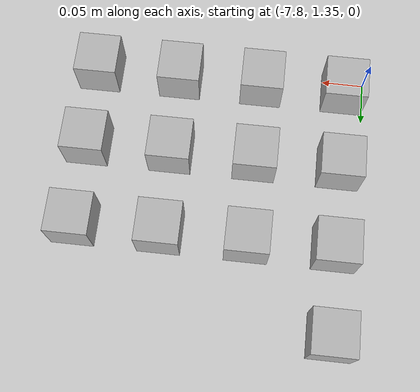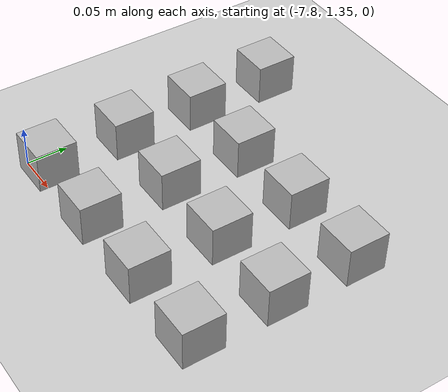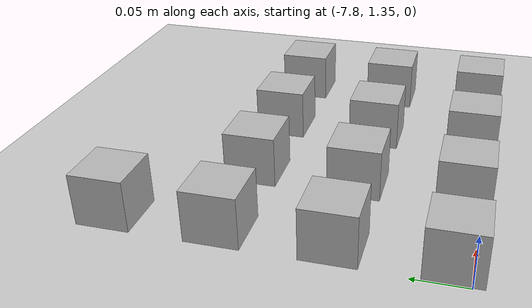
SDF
<sdf version="1.4">
 <world name="default">
  <model name="ground_plane">
   <static>1</static>
   <link name="link">
    <collision name="collision">
     <geometry><plane><normal>0 0 1</normal><size>100 100</size></plane></geometry>
     <surface><friction><ode><mu>100</mu><mu2>50</mu2></ode></friction></surface>
    </collision>
    <visual name="visual">
     <cast_shadows>0</cast_shadows>
     <geometry><plane><normal>0 0 1</normal><size>100 100</size></plane></geometry>
     <material>
      <script><uri>file://media/materials/scripts/gazebo.material</uri><name>Gazebo/Grey</name></script>
     </material>
    </visual>
    <velocity_decay><linear>0</linear><angular>0</angular></velocity_decay>
   </link>
  </model>
  <model name="at0">
   <static>0</static>
   <link name="link">
    <inertial>
     <mass>0.01</mass>
     <inertia><ixx>4e-05</ixx><ixy>0</ixy><ixz>0</ixz><iyy>4e-05</iyy><iyz>0</iyz><izz>4e-05</izz></inertia>
    </inertial>
    <visual name="visual">
     <geometry><box><size>0.05 0.05 0.05</size></box></geometry>
     <material>
      <script>
       <uri>model://at0/materials/scripts</uri>
       <uri>model://at0/materials/textures</uri>
       <name>at0/Diffuse</name>
      </script>
     </material>
    </visual>
    <collision name="collision">
     <geometry><box><size>0.05 0.05 0.05</size></box></geometry>
     <surface><friction><ode><mu>0.8</mu><mu2>0.7</mu2></ode></friction></surface>
    </collision>
    <velocity_decay><linear>0</linear><angular>0</angular></velocity_decay>
   </link>
   <pose>-7.77385 1.36515 0.025 0 -0 0</pose>
  </model>
  <model name="at1">
   <static>0</static>
   <link name="link">
    <inertial>
     <mass>0.01</mass>
     <inertia><ixx>4e-05</ixx><ixy>0</ixy><ixz>0</ixz><iyy>4e-05</iyy><iyz>0</iyz><izz>4e-05</izz></inertia>
    </inertial>
    <visual name="visual">
     <geometry><box><size>0.05 0.05 0.05</size></box></geometry>
     <material>
      <script>
       <uri>model://at0/materials/scripts</uri>
       <uri>model://at0/materials/textures</uri>
       <name>at0/Diffuse</name>
      </script>
     </material>
    </visual>
    <collision name="collision">
     <geometry><box><size>0.05 0.05 0.05</size></box></geometry>
     <surface><friction><ode><mu>0.8</mu><mu2>0.7</mu2></ode></friction></surface>
    </collision>
    <velocity_decay><linear>0</linear><angular>0</angular></velocity_decay>
   </link>
   <pose>-7.67385 1.36515 0.025 0 -0 0</pose>
  </model>
  <model name="at2">
   <static>0</static>
   <link name="link">
    <inertial>
     <mass>0.01</mass>
     <inertia><ixx>4e-05</ixx><ixy>0</ixy><ixz>0</ixz><iyy>4e-05</iyy><iyz>0</iyz><izz>4e-05</izz></inertia>
    </inertial>
    <visual name="visual">
     <geometry><box><size>0.05 0.05 0.05</size></box></geometry>
     <material>
      <script>
       <uri>model://at0/materials/scripts</uri>
       <uri>model://at0/materials/textures</uri>
       <name>at0/Diffuse</name>
      </script>
     </material>
    </visual>
    <collision name="collision">
     <geometry><box><size>0.05 0.05 0.05</size></box></geometry>
     <surface><friction><ode><mu>0.8</mu><mu2>0.7</mu2></ode></friction></surface>
    </collision>
    <velocity_decay><linear>0</linear><angular>0</angular></velocity_decay>
   </link>
   <pose>-7.57385 1.36515 0.025 0 -0 0</pose>
  </model>
  <model name="at3">
   <static>0</static>
   <link name="link">
    <inertial>
     <mass>0.01</mass>
     <inertia><ixx>4e-05</ixx><ixy>0</ixy><ixz>0</ixz><iyy>4e-05</iyy><iyz>0</iyz><izz>4e-05</izz></inertia>
    </inertial>
    <visual name="visual">
     <geometry><box><size>0.05 0.05 0.05</size></box></geometry>
     <material>
      <script>
       <uri>model://at0/materials/scripts</uri>
       <uri>model://at0/materials/textures</uri>
       <name>at0/Diffuse</name>
      </script>
     </material>
    </visual>
    <collision name="collision">
     <geometry><box><size>0.05 0.05 0.05</size></box></geometry>
     <surface><friction><ode><mu>0.8</mu><mu2>0.7</mu2></ode></friction></surface>
    </collision>
    <velocity_decay><linear>0</linear><angular>0</angular></velocity_decay>
   </link>
   <pose>-7.47385 1.36515 0.025 0 -0 0</pose>
  </model>
  <model name="at8">
   <static>0</static>
   <link name="link">
    <inertial>
     <mass>0.01</mass>
     <inertia><ixx>4e-05</ixx><ixy>0</ixy><ixz>0</ixz><iyy>4e-05</iyy><iyz>0</iyz><izz>4e-05</izz></inertia>
    </inertial>
    <visual name="visual">
     <geometry><box><size>0.05 0.05 0.05</size></box></geometry>
     <material>
      <script>
       <uri>model://at0/materials/scripts</uri>
       <uri>model://at0/materials/textures</uri>
       <name>at0/Diffuse</name>
      </script>
     </material>
    </visual>
    <collision name="collision">
     <geometry><box><size>0.05 0.05 0.05</size></box></geometry>
     <surface><friction><ode><mu>0.8</mu><mu2>0.7</mu2></ode></friction></surface>
    </collision>
    <velocity_decay><linear>0</linear><angular>0</angular></velocity_decay>
   </link>
   <pose>-7.77385 1.46515 0.025 0 -0 0</pose>
  </model>
  <model name="at9">
   <static>0</static>
   <link name="link">
    <inertial>
     <mass>0.01</mass>
     <inertia><ixx>4e-05</ixx><ixy>0</ixy><ixz>0</ixz><iyy>4e-05</iyy><iyz>0</iyz><izz>4e-05</izz></inertia>
    </inertial>
    <visual name="visual">
     <geometry><box><size>0.05 0.05 0.05</size></box></geometry>
     <material>
      <script>
       <uri>model://at0/materials/scripts</uri>
       <uri>model://at0/materials/textures</uri>
       <name>at0/Diffuse</name>
      </script>
     </material>
    </visual>
    <collision name="collision">
     <geometry><box><size>0.05 0.05 0.05</size></box></geometry>
     <surface><friction><ode><mu>0.8</mu><mu2>0.7</mu2></ode></friction></surface>
    </collision>
    <velocity_decay><linear>0</linear><angular>0</angular></velocity_decay>
   </link>
   <pose>-7.67385 1.46515 0.025 0 -0 0</pose>
  </model>
  <model name="at10">
   <static>0</static>
   <link name="link">
    <inertial>
     <mass>0.01</mass>
     <inertia><ixx>4e-05</ixx><ixy>0</ixy><ixz>0</ixz><iyy>4e-05</iyy><iyz>0</iyz><izz>4e-05</izz></inertia>
    </inertial>
    <visual name="visual">
     <geometry><box><size>0.05 0.05 0.05</size></box></geometry>
     <material>
      <script>
       <uri>model://at0/materials/scripts</uri>
       <uri>model://at0/materials/textures</uri>
       <name>at0/Diffuse</name>
      </script>
     </material>
    </visual>
    <collision name="collision">
     <geometry><box><size>0.05 0.05 0.05</size></box></geometry>
     <surface><friction><ode><mu>0.8</mu><mu2>0.7</mu2></ode></friction></surface>
    </collision>
    <velocity_decay><linear>0</linear><angular>0</angular></velocity_decay>
   </link>
   <pose>-7.57385 1.46515 0.025 0 -0 0</pose>
  </model>
  <model name="at11">
   <static>0</static>
   <link name="link">
    <inertial>
     <mass>0.01</mass>
     <inertia><ixx>4e-05</ixx><ixy>0</ixy><ixz>0</ixz><iyy>4e-05</iyy><iyz>0</iyz><izz>4e-05</izz></inertia>
    </inertial>
    <visual name="visual">
     <geometry><box><size>0.05 0.05 0.05</size></box></geometry>
     <material>
      <script>
       <uri>model://at0/materials/scripts</uri>
       <uri>model://at0/materials/textures</uri>
       <name>at0/Diffuse</name>
      </script>
     </material>
    </visual>
    <collision name="collision">
     <geometry><box><size>0.05 0.05 0.05</size></box></geometry>
     <surface><friction><ode><mu>0.8</mu><mu2>0.7</mu2></ode></friction></surface>
    </collision>
    <velocity_decay><linear>0</linear><angular>0</angular></velocity_decay>
   </link>
   <pose>-7.47385 1.46515 0.025 0 -0 0</pose>
  </model>
  <model name="at16">
   <static>0</static>
   <link name="link">
    <inertial>
     <mass>0.01</mass>
     <inertia><ixx>4e-05</ixx><ixy>0</ixy><ixz>0</ixz><iyy>4e-05</iyy><iyz>0</iyz><izz>4e-05</izz></inertia>
    </inertial>
    <visual name="visual">
     <geometry><box><size>0.05 0.05 0.05</size></box></geometry>
     <material>
      <script>
       <uri>model://at0/materials/scripts</uri>
       <uri>model://at0/materials/textures</uri>
       <name>at0/Diffuse</name>
      </script>
     </material>
    </visual>
    <collision name="collision">
     <geometry><box><size>0.05 0.05 0.05</size></box></geometry>
     <surface><friction><ode><mu>0.8</mu><mu2>0.7</mu2></ode></friction></surface>
    </collision>
    <velocity_decay><linear>0</linear><angular>0</angular></velocity_decay>
   </link>
   <pose>-7.77385 1.56515 0.025 0 -0 0</pose>
  </model>
  <model name="at17">
   <static>0</static>
   <link name="link">
    <inertial>
     <mass>0.01</mass>
     <inertia><ixx>4e-05</ixx><ixy>0</ixy><ixz>0</ixz><iyy>4e-05</iyy><iyz>0</iyz><izz>4e-05</izz></inertia>
    </inertial>
    <visual name="visual">
     <geometry><box><size>0.05 0.05 0.05</size></box></geometry>
     <material>
      <script>
       <uri>model://at0/materials/scripts</uri>
       <uri>model://at0/materials/textures</uri>
       <name>at0/Diffuse</name>
      </script>
     </material>
    </visual>
    <collision name="collision">
     <geometry><box><size>0.05 0.05 0.05</size></box></geometry>
     <surface><friction><ode><mu>0.8</mu><mu2>0.7</mu2></ode></friction></surface>
    </collision>
    <velocity_decay><linear>0</linear><angular>0</angular></velocity_decay>
   </link>
   <pose>-7.67385 1.56515 0.025 0 -0 0</pose>
  </model>
  <model name="at18">
   <static>0</static>
   <link name="link">
    <inertial>
     <mass>0.01</mass>
     <inertia><ixx>4e-05</ixx><ixy>0</ixy><ixz>0</ixz><iyy>4e-05</iyy><iyz>0</iyz><izz>4e-05</izz></inertia>
    </inertial>
    <visual name="visual">
     <geometry><box><size>0.05 0.05 0.05</size></box></geometry>
     <material>
      <script>
       <uri>model://at0/materials/scripts</uri>
       <uri>model://at0/materials/textures</uri>
       <name>at0/Diffuse</name>
      </script>
     </material>
    </visual>
    <collision name="collision">
     <geometry><box><size>0.05 0.05 0.05</size></box></geometry>
     <surface><friction><ode><mu>0.8</mu><mu2>0.7</mu2></ode></friction></surface>
    </collision>
    <velocity_decay><linear>0</linear><angular>0</angular></velocity_decay>
   </link>
   <pose>-7.57385 1.56515 0.025 0 -0 0</pose>
  </model>
  <model name="at19">
   <static>0</static>
   <link name="link">
    <inertial>
     <mass>0.01</mass>
     <inertia><ixx>4e-05</ixx><ixy>0</ixy><ixz>0</ixz><iyy>4e-05</iyy><iyz>0</iyz><izz>4e-05</izz></inertia>
    </inertial>
    <visual name="visual">
     <geometry><box><size>0.05 0.05 0.05</size></box></geometry>
     <material>
      <script>
       <uri>model://at0/materials/scripts</uri>
       <uri>model://at0/materials/textures</uri>
       <name>at0/Diffuse</name>
      </script>
     </material>
    </visual>
    <collision name="collision">
     <geometry><box><size>0.05 0.05 0.05</size></box></geometry>
     <surface><friction><ode><mu>0.8</mu><mu2>0.7</mu2></ode></friction></surface>
    </collision>
    <velocity_decay><linear>0</linear><angular>0</angular></velocity_decay>
   </link>
   <pose>-7.47385 1.56515 0.025 0 -0 0</pose>
  </model>
  <model name="at24">
   <static>0</static>
   <link name="link">
    <inertial>
     <mass>0.01</mass>
     <inertia><ixx>4e-05</ixx><ixy>0</ixy><ixz>0</ixz><iyy>4e-05</iyy><iyz>0</iyz><izz>4e-05</izz></inertia>
    </inertial>
    <visual name="visual">
     <geometry><box><size>0.05 0.05 0.05</size></box></geometry>
     <material>
      <script>
       <uri>model://at0/materials/scripts</uri>
       <uri>model://at0/materials/textures</uri>
       <name>at0/Diffuse</name>
      </script>
     </material>
    </visual>
    <collision name="collision">
     <geometry><box><size>0.05 0.05 0.05</size></box></geometry>
     <surface><friction><ode><mu>0.8</mu><mu2>0.7</mu2></ode></friction></surface>
    </collision>
    <velocity_decay><linear>0</linear><angular>0</angular></velocity_decay>
   </link>
   <pose>-7.77385 1.66515 0.025 0 -0 0</pose>
  </model>
 </world>
</sdf>
